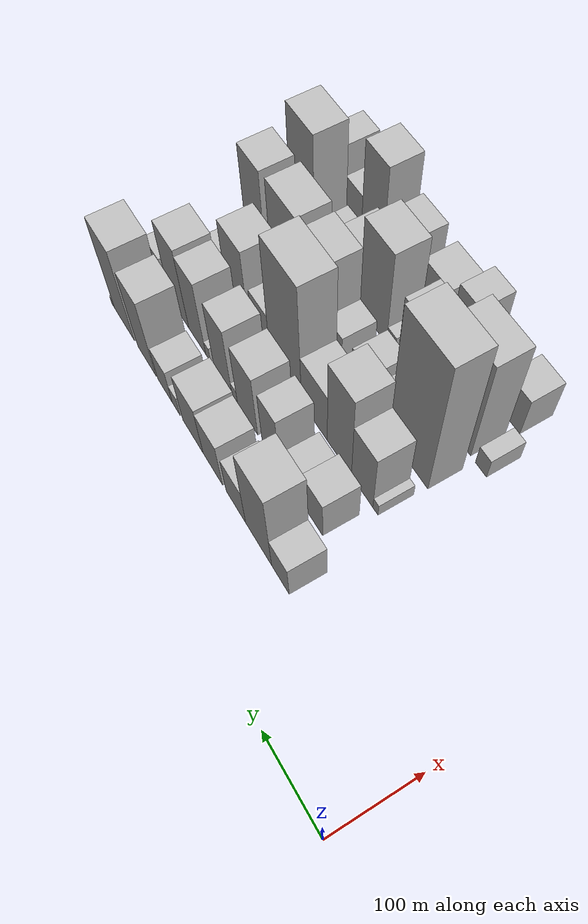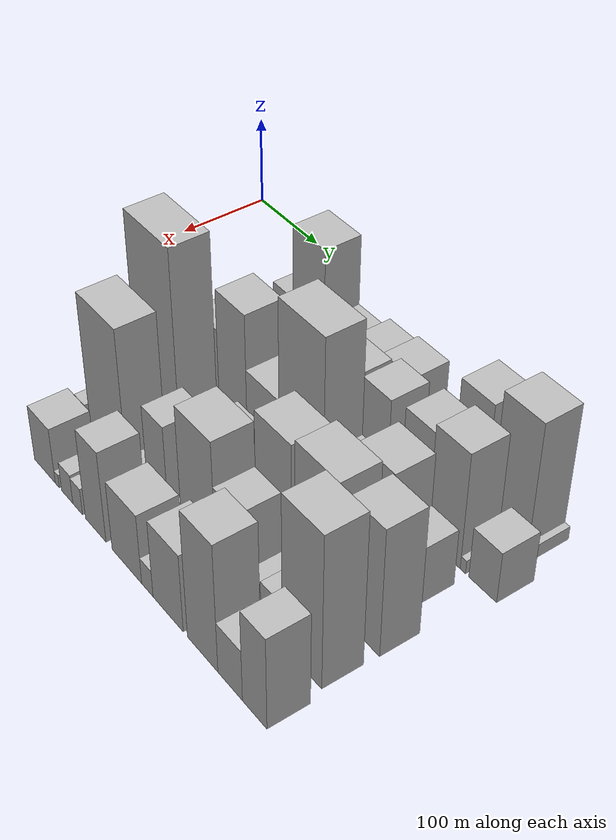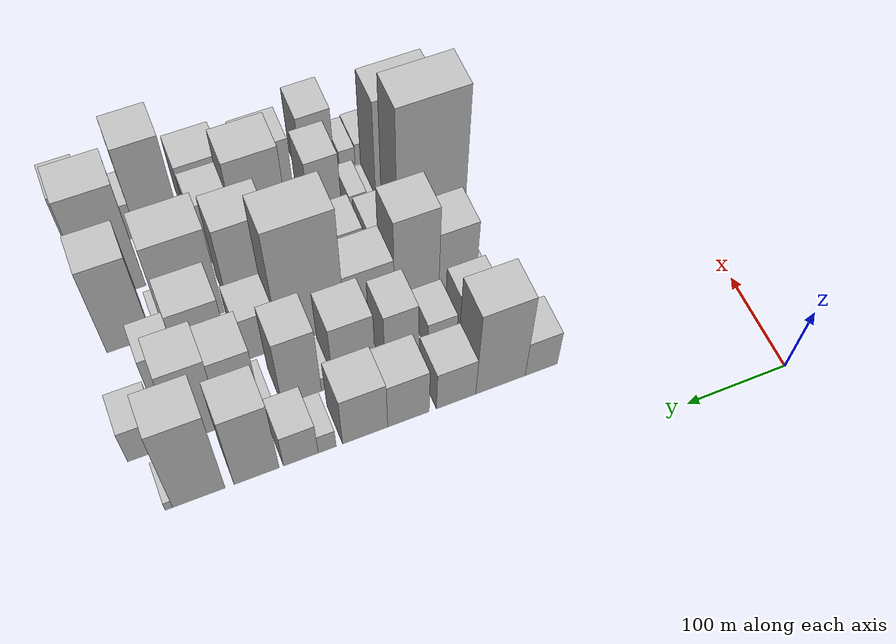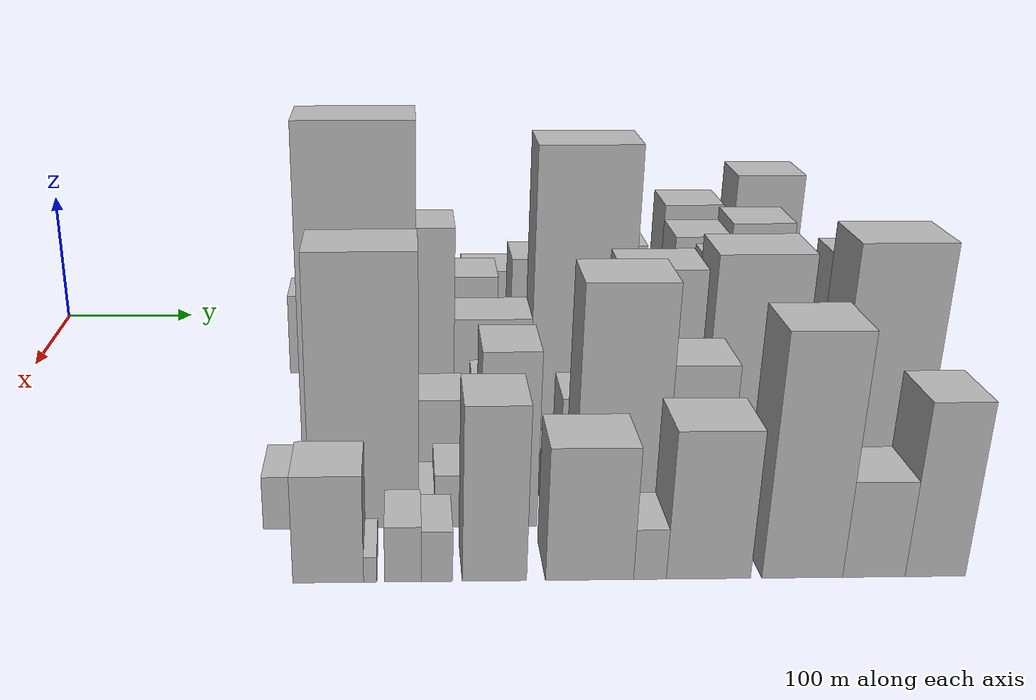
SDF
<sdf version="1.6">
 <world name="default">
  <model name="building_30">
   <static>1</static>
   <pose>100.0000 207.0768 0 0.000000 0.000000 0.000000</pose>
   <link name="link">
    <pose>0 0 30.00 0 0 0</pose>
    <collision name="collision"><geometry><box><size>40.0000 31.9721 60.0000</size></box></geometry></collision>
    <visual name="visual">
     <cast_shadows>0</cast_shadows>
     <geometry><box><size>40.0000 31.9721 60.0000</size></box></geometry>
     <material>
      <script>
       <uri>model://HANNAS_wall/materials/scripts</uri>
       <uri>model://HANNAS_wall/materials/textures</uri>
       <name>vrc/HANNAS_wall</name>
      </script>
     </material>
    </visual>
   </link>
  </model>
  <model name="building_31">
   <static>1</static>
   <pose>100.0000 247.4784 0 0.000000 0.000000 0.000000</pose>
   <link name="link">
    <pose>0 0 72.00 0 0 0</pose>
    <collision name="collision"><geometry><box><size>40.0000 48.8311 144.0000</size></box></geometry></collision>
    <visual name="visual">
     <cast_shadows>0</cast_shadows>
     <geometry><box><size>40.0000 48.8311 144.0000</size></box></geometry>
     <material>
      <script>
       <uri>model://HANNAS_wall/materials/scripts</uri>
       <uri>model://HANNAS_wall/materials/textures</uri>
       <name>vrc/HANNAS_wall</name>
      </script>
     </material>
    </visual>
   </link>
  </model>
  <model name="building_32">
   <static>1</static>
   <pose>100.0000 290.9465 0 0.000000 0.000000 0.000000</pose>
   <link name="link">
    <pose>0 0 33.00 0 0 0</pose>
    <collision name="collision"><geometry><box><size>40.0000 38.1051 66.0000</size></box></geometry></collision>
    <visual name="visual">
     <cast_shadows>0</cast_shadows>
     <geometry><box><size>40.0000 38.1051 66.0000</size></box></geometry>
     <material>
      <script>
       <uri>model://HANNAS_wall/materials/scripts</uri>
       <uri>model://HANNAS_wall/materials/textures</uri>
       <name>vrc/HANNAS_wall</name>
      </script>
     </material>
    </visual>
   </link>
  </model>
  <model name="building_33">
   <static>1</static>
   <pose>100.0000 336.8426 0 0.000000 0.000000 0.000000</pose>
   <link name="link">
    <pose>0 0 39.00 0 0 0</pose>
    <collision name="collision"><geometry><box><size>40.0000 39.6870 78.0000</size></box></geometry></collision>
    <visual name="visual">
     <cast_shadows>0</cast_shadows>
     <geometry><box><size>40.0000 39.6870 78.0000</size></box></geometry>
     <material>
      <script>
       <uri>model://HANNAS_wall/materials/scripts</uri>
       <uri>model://HANNAS_wall/materials/textures</uri>
       <name>vrc/HANNAS_wall</name>
      </script>
     </material>
    </visual>
   </link>
  </model>
  <model name="building_34">
   <static>1</static>
   <pose>100.0000 377.9563 0 0.000000 0.000000 0.000000</pose>
   <link name="link">
    <pose>0 0 42.00 0 0 0</pose>
    <collision name="collision"><geometry><box><size>40.0000 42.5406 84.0000</size></box></geometry></collision>
    <visual name="visual">
     <cast_shadows>0</cast_shadows>
     <geometry><box><size>40.0000 42.5406 84.0000</size></box></geometry>
     <material>
      <script>
       <uri>model://HANNAS_wall/materials/scripts</uri>
       <uri>model://HANNAS_wall/materials/textures</uri>
       <name>vrc/HANNAS_wall</name>
      </script>
     </material>
    </visual>
   </link>
  </model>
  <model name="building_35">
   <static>1</static>
   <pose>100.0000 413.5718 0 0.000000 0.000000 0.000000</pose>
   <link name="link">
    <pose>0 0 16.50 0 0 0</pose>
    <collision name="collision"><geometry><box><size>40.0000 16.6904 33.0000</size></box></geometry></collision>
    <visual name="visual">
     <cast_shadows>0</cast_shadows>
     <geometry><box><size>40.0000 16.6904 33.0000</size></box></geometry>
     <material>
      <script>
       <uri>model://HANNAS_wall/materials/scripts</uri>
       <uri>model://HANNAS_wall/materials/textures</uri>
       <name>vrc/HANNAS_wall</name>
      </script>
     </material>
    </visual>
   </link>
  </model>
  <model name="building_36">
   <static>1</static>
   <pose>100.0000 437.9876 0 0.000000 0.000000 0.000000</pose>
   <link name="link">
    <pose>0 0 28.50 0 0 0</pose>
    <collision name="collision"><geometry><box><size>40.0000 32.1411 57.0000</size></box></geometry></collision>
    <visual name="visual">
     <cast_shadows>0</cast_shadows>
     <geometry><box><size>40.0000 32.1411 57.0000</size></box></geometry>
     <material>
      <script>
       <uri>model://HANNAS_wall/materials/scripts</uri>
       <uri>model://HANNAS_wall/materials/textures</uri>
       <name>vrc/HANNAS_wall</name>
      </script>
     </material>
    </visual>
   </link>
  </model>
  <model name="building_37">
   <static>1</static>
   <pose>100.0000 478.6781 0 0.000000 0.000000 0.000000</pose>
   <link name="link">
    <pose>0 0 63.00 0 0 0</pose>
    <collision name="collision"><geometry><box><size>40.0000 41.2398 126.0000</size></box></geometry></collision>
    <visual name="visual">
     <cast_shadows>0</cast_shadows>
     <geometry><box><size>40.0000 41.2398 126.0000</size></box></geometry>
     <material>
      <script>
       <uri>model://HANNAS_wall/materials/scripts</uri>
       <uri>model://HANNAS_wall/materials/textures</uri>
       <name>vrc/HANNAS_wall</name>
      </script>
     </material>
    </visual>
   </link>
  </model>
  <model name="building_38">
   <static>1</static>
   <pose>100.0000 530.9011 0 0.000000 0.000000 0.000000</pose>
   <link name="link">
    <pose>0 0 73.50 0 0 0</pose>
    <collision name="collision"><geometry><box><size>40.0000 47.2061 147.0000</size></box></geometry></collision>
    <visual name="visual">
     <cast_shadows>0</cast_shadows>
     <geometry><box><size>40.0000 47.2061 147.0000</size></box></geometry>
     <material>
      <script>
       <uri>model://HANNAS_wall/materials/scripts</uri>
       <uri>model://HANNAS_wall/materials/textures</uri>
       <name>vrc/HANNAS_wall</name>
      </script>
     </material>
    </visual>
   </link>
  </model>
  <model name="building_39">
   <static>1</static>
   <pose>100.0000 557.7680 0 0.000000 0.000000 0.000000</pose>
   <link name="link">
    <pose>0 0 7.50 0 0 0</pose>
    <collision name="collision"><geometry><box><size>40.0000 6.5279 15.0000</size></box></geometry></collision>
    <visual name="visual">
     <cast_shadows>0</cast_shadows>
     <geometry><box><size>40.0000 6.5279 15.0000</size></box></geometry>
     <material>
      <script>
       <uri>model://HANNAS_wall/materials/scripts</uri>
       <uri>model://HANNAS_wall/materials/textures</uri>
       <name>vrc/HANNAS_wall</name>
      </script>
     </material>
    </visual>
   </link>
  </model>
  <model name="building_81">
   <static>1</static>
   <pose>155.0000 242.4506 0 0.000000 0.000000 0.000000</pose>
   <link name="link">
    <pose>0 0 33.00 0 0 0</pose>
    <collision name="collision"><geometry><box><size>40.0000 37.1691 66.0000</size></box></geometry></collision>
    <visual name="visual">
     <cast_shadows>0</cast_shadows>
     <geometry><box><size>40.0000 37.1691 66.0000</size></box></geometry>
     <material>
      <script>
       <uri>model://HANNAS_wall/materials/scripts</uri>
       <uri>model://HANNAS_wall/materials/textures</uri>
       <name>vrc/HANNAS_wall</name>
      </script>
     </material>
    </visual>
   </link>
  </model>
  <model name="building_82">
   <static>1</static>
   <pose>155.0000 281.3263 0 0.000000 0.000000 0.000000</pose>
   <link name="link">
    <pose>0 0 25.50 0 0 0</pose>
    <collision name="collision"><geometry><box><size>40.0000 28.5824 51.0000</size></box></geometry></collision>
    <visual name="visual">
     <cast_shadows>0</cast_shadows>
     <geometry><box><size>40.0000 28.5824 51.0000</size></box></geometry>
     <material>
      <script>
       <uri>model://HANNAS_wall/materials/scripts</uri>
       <uri>model://HANNAS_wall/materials/textures</uri>
       <name>vrc/HANNAS_wall</name>
      </script>
     </material>
    </visual>
   </link>
  </model>
  <model name="building_83">
   <static>1</static>
   <pose>155.0000 321.0863 0 0.000000 0.000000 0.000000</pose>
   <link name="link">
    <pose>0 0 46.50 0 0 0</pose>
    <collision name="collision"><geometry><box><size>40.0000 32.9375 93.0000</size></box></geometry></collision>
    <visual name="visual">
     <cast_shadows>0</cast_shadows>
     <geometry><box><size>40.0000 32.9375 93.0000</size></box></geometry>
     <material>
      <script>
       <uri>model://HANNAS_wall/materials/scripts</uri>
       <uri>model://HANNAS_wall/materials/textures</uri>
       <name>vrc/HANNAS_wall</name>
      </script>
     </material>
    </visual>
   </link>
  </model>
  <model name="building_84">
   <static>1</static>
   <pose>155.0000 366.9229 0 0.000000 0.000000 0.000000</pose>
   <link name="link">
    <pose>0 0 52.50 0 0 0</pose>
    <collision name="collision"><geometry><box><size>40.0000 40.7356 105.0000</size></box></geometry></collision>
    <visual name="visual">
     <cast_shadows>0</cast_shadows>
     <geometry><box><size>40.0000 40.7356 105.0000</size></box></geometry>
     <material>
      <script>
       <uri>model://HANNAS_wall/materials/scripts</uri>
       <uri>model://HANNAS_wall/materials/textures</uri>
       <name>vrc/HANNAS_wall</name>
      </script>
     </material>
    </visual>
   </link>
  </model>
  <model name="building_85">
   <static>1</static>
   <pose>155.0000 393.0219 0 0.000000 0.000000 0.000000</pose>
   <link name="link">
    <pose>0 0 12.00 0 0 0</pose>
    <collision name="collision"><geometry><box><size>40.0000 11.4626 24.0000</size></box></geometry></collision>
    <visual name="visual">
     <cast_shadows>0</cast_shadows>
     <geometry><box><size>40.0000 11.4626 24.0000</size></box></geometry>
     <material>
      <script>
       <uri>model://HANNAS_wall/materials/scripts</uri>
       <uri>model://HANNAS_wall/materials/textures</uri>
       <name>vrc/HANNAS_wall</name>
      </script>
     </material>
    </visual>
   </link>
  </model>
  <model name="building_86">
   <static>1</static>
   <pose>155.0000 417.4923 0 0.000000 0.000000 0.000000</pose>
   <link name="link">
    <pose>0 0 57.00 0 0 0</pose>
    <collision name="collision"><geometry><box><size>40.0000 37.4781 114.0000</size></box></geometry></collision>
    <visual name="visual">
     <cast_shadows>0</cast_shadows>
     <geometry><box><size>40.0000 37.4781 114.0000</size></box></geometry>
     <material>
      <script>
       <uri>model://HANNAS_wall/materials/scripts</uri>
       <uri>model://HANNAS_wall/materials/textures</uri>
       <name>vrc/HANNAS_wall</name>
      </script>
     </material>
    </visual>
   </link>
  </model>
  <model name="building_87">
   <static>1</static>
   <pose>155.0000 449.3597 0 0.000000 0.000000 0.000000</pose>
   <link name="link">
    <pose>0 0 12.00 0 0 0</pose>
    <collision name="collision"><geometry><box><size>40.0000 10.2568 24.0000</size></box></geometry></collision>
    <visual name="visual">
     <cast_shadows>0</cast_shadows>
     <geometry><box><size>40.0000 10.2568 24.0000</size></box></geometry>
     <material>
      <script>
       <uri>model://HANNAS_wall/materials/scripts</uri>
       <uri>model://HANNAS_wall/materials/textures</uri>
       <name>vrc/HANNAS_wall</name>
      </script>
     </material>
    </visual>
   </link>
  </model>
  <model name="building_88">
   <static>1</static>
   <pose>155.0000 473.1040 0 0.000000 0.000000 0.000000</pose>
   <link name="link">
    <pose>0 0 60.00 0 0 0</pose>
    <collision name="collision"><geometry><box><size>40.0000 37.2318 120.0000</size></box></geometry></collision>
    <visual name="visual">
     <cast_shadows>0</cast_shadows>
     <geometry><box><size>40.0000 37.2318 120.0000</size></box></geometry>
     <material>
      <script>
       <uri>model://HANNAS_wall/materials/scripts</uri>
       <uri>model://HANNAS_wall/materials/textures</uri>
       <name>vrc/HANNAS_wall</name>
      </script>
     </material>
    </visual>
   </link>
  </model>
  <model name="building_89">
   <static>1</static>
   <pose>155.0000 512.6525 0 0.000000 0.000000 0.000000</pose>
   <link name="link">
    <pose>0 0 64.50 0 0 0</pose>
    <collision name="collision"><geometry><box><size>40.0000 41.8652 129.0000</size></box></geometry></collision>
    <visual name="visual">
     <cast_shadows>0</cast_shadows>
     <geometry><box><size>40.0000 41.8652 129.0000</size></box></geometry>
     <material>
      <script>
       <uri>model://HANNAS_wall/materials/scripts</uri>
       <uri>model://HANNAS_wall/materials/textures</uri>
       <name>vrc/HANNAS_wall</name>
      </script>
     </material>
    </visual>
   </link>
  </model>
  <model name="building_90">
   <static>1</static>
   <pose>155.0000 536.9593 0 0.000000 0.000000 0.000000</pose>
   <link name="link">
    <pose>0 0 7.50 0 0 0</pose>
    <collision name="collision"><geometry><box><size>40.0000 6.7485 15.0000</size></box></geometry></collision>
    <visual name="visual">
     <cast_shadows>0</cast_shadows>
     <geometry><box><size>40.0000 6.7485 15.0000</size></box></geometry>
     <material>
      <script>
       <uri>model://HANNAS_wall/materials/scripts</uri>
       <uri>model://HANNAS_wall/materials/textures</uri>
       <name>vrc/HANNAS_wall</name>
      </script>
     </material>
    </visual>
   </link>
  </model>
  <model name="building_91">
   <static>1</static>
   <pose>155.0000 561.4248 0 0.000000 0.000000 0.000000</pose>
   <link name="link">
    <pose>0 0 28.50 0 0 0</pose>
    <collision name="collision"><geometry><box><size>40.0000 34.1826 57.0000</size></box></geometry></collision>
    <visual name="visual">
     <cast_shadows>0</cast_shadows>
     <geometry><box><size>40.0000 34.1826 57.0000</size></box></geometry>
     <material>
      <script>
       <uri>model://HANNAS_wall/materials/scripts</uri>
       <uri>model://HANNAS_wall/materials/textures</uri>
       <name>vrc/HANNAS_wall</name>
      </script>
     </material>
    </visual>
   </link>
  </model>
  <model name="building_134">
   <static>1</static>
   <pose>210.0000 218.9743 0 0.000000 0.000000 0.000000</pose>
   <link name="link">
    <pose>0 0 10.50 0 0 0</pose>
    <collision name="collision"><geometry><box><size>40.0000 9.0602 21.0000</size></box></geometry></collision>
    <visual name="visual">
     <cast_shadows>0</cast_shadows>
     <geometry><box><size>40.0000 9.0602 21.0000</size></box></geometry>
     <material>
      <script>
       <uri>model://HANNAS_wall/materials/scripts</uri>
       <uri>model://HANNAS_wall/materials/textures</uri>
       <name>vrc/HANNAS_wall</name>
      </script>
     </material>
    </visual>
   </link>
  </model>
  <model name="building_135">
   <static>1</static>
   <pose>210.0000 242.5876 0 0.000000 0.000000 0.000000</pose>
   <link name="link">
    <pose>0 0 49.50 0 0 0</pose>
    <collision name="collision"><geometry><box><size>40.0000 38.1665 99.0000</size></box></geometry></collision>
    <visual name="visual">
     <cast_shadows>0</cast_shadows>
     <geometry><box><size>40.0000 38.1665 99.0000</size></box></geometry>
     <material>
      <script>
       <uri>model://HANNAS_wall/materials/scripts</uri>
       <uri>model://HANNAS_wall/materials/textures</uri>
       <name>vrc/HANNAS_wall</name>
      </script>
     </material>
    </visual>
   </link>
  </model>
  <model name="building_136">
   <static>1</static>
   <pose>210.0000 283.8394 0 0.000000 0.000000 0.000000</pose>
   <link name="link">
    <pose>0 0 72.00 0 0 0</pose>
    <collision name="collision"><geometry><box><size>40.0000 44.3369 144.0000</size></box></geometry></collision>
    <visual name="visual">
     <cast_shadows>0</cast_shadows>
     <geometry><box><size>40.0000 44.3369 144.0000</size></box></geometry>
     <material>
      <script>
       <uri>model://HANNAS_wall/materials/scripts</uri>
       <uri>model://HANNAS_wall/materials/textures</uri>
       <name>vrc/HANNAS_wall</name>
      </script>
     </material>
    </visual>
   </link>
  </model>
  <model name="building_137">
   <static>1</static>
   <pose>210.0000 330.6509 0 0.000000 0.000000 0.000000</pose>
   <link name="link">
    <pose>0 0 42.00 0 0 0</pose>
    <collision name="collision"><geometry><box><size>40.0000 49.2861 84.0000</size></box></geometry></collision>
    <visual name="visual">
     <cast_shadows>0</cast_shadows>
     <geometry><box><size>40.0000 49.2861 84.0000</size></box></geometry>
     <material>
      <script>
       <uri>model://HANNAS_wall/materials/scripts</uri>
       <uri>model://HANNAS_wall/materials/textures</uri>
       <name>vrc/HANNAS_wall</name>
      </script>
     </material>
    </visual>
   </link>
  </model>
  <model name="building_138">
   <static>1</static>
   <pose>210.0000 387.0915 0 0.000000 0.000000 0.000000</pose>
   <link name="link">
    <pose>0 0 97.50 0 0 0</pose>
    <collision name="collision"><geometry><box><size>40.0000 63.5952 195.0000</size></box></geometry></collision>
    <visual name="visual">
     <cast_shadows>0</cast_shadows>
     <geometry><box><size>40.0000 63.5952 195.0000</size></box></geometry>
     <material>
      <script>
       <uri>model://HANNAS_wall/materials/scripts</uri>
       <uri>model://HANNAS_wall/materials/textures</uri>
       <name>vrc/HANNAS_wall</name>
      </script>
     </material>
    </visual>
   </link>
  </model>
  <model name="building_139">
   <static>1</static>
   <pose>210.0000 436.9905 0 0.000000 0.000000 0.000000</pose>
   <link name="link">
    <pose>0 0 36.00 0 0 0</pose>
    <collision name="collision"><geometry><box><size>40.0000 36.2027 72.0000</size></box></geometry></collision>
    <visual name="visual">
     <cast_shadows>0</cast_shadows>
     <geometry><box><size>40.0000 36.2027 72.0000</size></box></geometry>
     <material>
      <script>
       <uri>model://HANNAS_wall/materials/scripts</uri>
       <uri>model://HANNAS_wall/materials/textures</uri>
       <name>vrc/HANNAS_wall</name>
      </script>
     </material>
    </visual>
   </link>
  </model>
  <model name="building_140">
   <static>1</static>
   <pose>210.0000 486.9974 0 0.000000 0.000000 0.000000</pose>
   <link name="link">
    <pose>0 0 60.00 0 0 0</pose>
    <collision name="collision"><geometry><box><size>40.0000 45.8111 120.0000</size></box></geometry></collision>
    <visual name="visual">
     <cast_shadows>0</cast_shadows>
     <geometry><box><size>40.0000 45.8111 120.0000</size></box></geometry>
     <material>
      <script>
       <uri>model://HANNAS_wall/materials/scripts</uri>
       <uri>model://HANNAS_wall/materials/textures</uri>
       <name>vrc/HANNAS_wall</name>
      </script>
     </material>
    </visual>
   </link>
  </model>
  <model name="building_141">
   <static>1</static>
   <pose>210.0000 526.6734 0 0.000000 0.000000 0.000000</pose>
   <link name="link">
    <pose>0 0 31.50 0 0 0</pose>
    <collision name="collision"><geometry><box><size>40.0000 33.5410 63.0000</size></box></geometry></collision>
    <visual name="visual">
     <cast_shadows>0</cast_shadows>
     <geometry><box><size>40.0000 33.5410 63.0000</size></box></geometry>
     <material>
      <script>
       <uri>model://HANNAS_wall/materials/scripts</uri>
       <uri>model://HANNAS_wall/materials/textures</uri>
       <name>vrc/HANNAS_wall</name>
      </script>
     </material>
    </visual>
   </link>
  </model>
  <model name="building_184">
   <static>1</static>
   <pose>265.0000 246.9088 0 0.000000 0.000000 0.000000</pose>
   <link name="link">
    <pose>0 0 111.00 0 0 0</pose>
    <collision name="collision"><geometry><box><size>40.0000 68.9936 222.0000</size></box></geometry></collision>
    <visual name="visual">
     <cast_shadows>0</cast_shadows>
     <geometry><box><size>40.0000 68.9936 222.0000</size></box></geometry>
     <material>
      <script>
       <uri>model://HANNAS_wall/materials/scripts</uri>
       <uri>model://HANNAS_wall/materials/textures</uri>
       <name>vrc/HANNAS_wall</name>
      </script>
     </material>
    </visual>
   </link>
  </model>
  <model name="building_185">
   <static>1</static>
   <pose>265.0000 295.7043 0 0.000000 0.000000 0.000000</pose>
   <link name="link">
    <pose>0 0 27.00 0 0 0</pose>
    <collision name="collision"><geometry><box><size>40.0000 28.5974 54.0000</size></box></geometry></collision>
    <visual name="visual">
     <cast_shadows>0</cast_shadows>
     <geometry><box><size>40.0000 28.5974 54.0000</size></box></geometry>
     <material>
      <script>
       <uri>model://HANNAS_wall/materials/scripts</uri>
       <uri>model://HANNAS_wall/materials/textures</uri>
       <name>vrc/HANNAS_wall</name>
      </script>
     </material>
    </visual>
   </link>
  </model>
  <model name="building_186">
   <static>1</static>
   <pose>265.0000 332.8525 0 0.000000 0.000000 0.000000</pose>
   <link name="link">
    <pose>0 0 31.50 0 0 0</pose>
    <collision name="collision"><geometry><box><size>40.0000 35.6989 63.0000</size></box></geometry></collision>
    <visual name="visual">
     <cast_shadows>0</cast_shadows>
     <geometry><box><size>40.0000 35.6989 63.0000</size></box></geometry>
     <material>
      <script>
       <uri>model://HANNAS_wall/materials/scripts</uri>
       <uri>model://HANNAS_wall/materials/textures</uri>
       <name>vrc/HANNAS_wall</name>
      </script>
     </material>
    </visual>
   </link>
  </model>
  <model name="building_187">
   <static>1</static>
   <pose>265.0000 355.3073 0 0.000000 0.000000 0.000000</pose>
   <link name="link">
    <pose>0 0 10.50 0 0 0</pose>
    <collision name="collision"><geometry><box><size>40.0000 9.2108 21.0000</size></box></geometry></collision>
    <visual name="visual">
     <cast_shadows>0</cast_shadows>
     <geometry><box><size>40.0000 9.2108 21.0000</size></box></geometry>
     <material>
      <script>
       <uri>model://HANNAS_wall/materials/scripts</uri>
       <uri>model://HANNAS_wall/materials/textures</uri>
       <name>vrc/HANNAS_wall</name>
      </script>
     </material>
    </visual>
   </link>
  </model>
  <model name="building_188">
   <static>1</static>
   <pose>265.0000 384.2195 0 0.000000 0.000000 0.000000</pose>
   <link name="link">
    <pose>0 0 27.00 0 0 0</pose>
    <collision name="collision"><geometry><box><size>40.0000 30.6137 54.0000</size></box></geometry></collision>
    <visual name="visual">
     <cast_shadows>0</cast_shadows>
     <geometry><box><size>40.0000 30.6137 54.0000</size></box></geometry>
     <material>
      <script>
       <uri>model://HANNAS_wall/materials/scripts</uri>
       <uri>model://HANNAS_wall/materials/textures</uri>
       <name>vrc/HANNAS_wall</name>
      </script>
     </material>
    </visual>
   </link>
  </model>
  <model name="building_189">
   <static>1</static>
   <pose>265.0000 424.6347 0 0.000000 0.000000 0.000000</pose>
   <link name="link">
    <pose>0 0 67.50 0 0 0</pose>
    <collision name="collision"><geometry><box><size>40.0000 50.2166 135.0000</size></box></geometry></collision>
    <visual name="visual">
     <cast_shadows>0</cast_shadows>
     <geometry><box><size>40.0000 50.2166 135.0000</size></box></geometry>
     <material>
      <script>
       <uri>model://HANNAS_wall/materials/scripts</uri>
       <uri>model://HANNAS_wall/materials/textures</uri>
       <name>vrc/HANNAS_wall</name>
      </script>
     </material>
    </visual>
   </link>
  </model>
  <model name="building_190">
   <static>1</static>
   <pose>265.0000 483.2213 0 0.000000 0.000000 0.000000</pose>
   <link name="link">
    <pose>0 0 72.00 0 0 0</pose>
    <collision name="collision"><geometry><box><size>40.0000 56.9568 144.0000</size></box></geometry></collision>
    <visual name="visual">
     <cast_shadows>0</cast_shadows>
     <geometry><box><size>40.0000 56.9568 144.0000</size></box></geometry>
     <material>
      <script>
       <uri>model://HANNAS_wall/materials/scripts</uri>
       <uri>model://HANNAS_wall/materials/textures</uri>
       <name>vrc/HANNAS_wall</name>
      </script>
     </material>
    </visual>
   </link>
  </model>
  <model name="building_191">
   <static>1</static>
   <pose>265.0000 515.3617 0 0.000000 0.000000 0.000000</pose>
   <link name="link">
    <pose>0 0 7.50 0 0 0</pose>
    <collision name="collision"><geometry><box><size>40.0000 7.3239 15.0000</size></box></geometry></collision>
    <visual name="visual">
     <cast_shadows>0</cast_shadows>
     <geometry><box><size>40.0000 7.3239 15.0000</size></box></geometry>
     <material>
      <script>
       <uri>model://HANNAS_wall/materials/scripts</uri>
       <uri>model://HANNAS_wall/materials/textures</uri>
       <name>vrc/HANNAS_wall</name>
      </script>
     </material>
    </visual>
   </link>
  </model>
  <model name="building_192">
   <static>1</static>
   <pose>265.0000 545.4132 0 0.000000 0.000000 0.000000</pose>
   <link name="link">
    <pose>0 0 70.50 0 0 0</pose>
    <collision name="collision"><geometry><box><size>40.0000 42.7792 141.0000</size></box></geometry></collision>
    <visual name="visual">
     <cast_shadows>0</cast_shadows>
     <geometry><box><size>40.0000 42.7792 141.0000</size></box></geometry>
     <material>
      <script>
       <uri>model://HANNAS_wall/materials/scripts</uri>
       <uri>model://HANNAS_wall/materials/textures</uri>
       <name>vrc/HANNAS_wall</name>
      </script>
     </material>
    </visual>
   </link>
  </model>
  <model name="building_232">
   <static>1</static>
   <pose>320.0000 202.8331 0 0.000000 0.000000 0.000000</pose>
   <link name="link">
    <pose>0 0 16.50 0 0 0</pose>
    <collision name="collision"><geometry><box><size>40.0000 18.3374 33.0000</size></box></geometry></collision>
    <visual name="visual">
     <cast_shadows>0</cast_shadows>
     <geometry><box><size>40.0000 18.3374 33.0000</size></box></geometry>
     <material>
      <script>
       <uri>model://HANNAS_wall/materials/scripts</uri>
       <uri>model://HANNAS_wall/materials/textures</uri>
       <name>vrc/HANNAS_wall</name>
      </script>
     </material>
    </visual>
   </link>
  </model>
  <model name="building_233">
   <static>1</static>
   <pose>320.0000 250.8969 0 0.000000 0.000000 0.000000</pose>
   <link name="link">
    <pose>0 0 82.50 0 0 0</pose>
    <collision name="collision"><geometry><box><size>40.0000 61.7901 165.0000</size></box></geometry></collision>
    <visual name="visual">
     <cast_shadows>0</cast_shadows>
     <geometry><box><size>40.0000 61.7901 165.0000</size></box></geometry>
     <material>
      <script>
       <uri>model://HANNAS_wall/materials/scripts</uri>
       <uri>model://HANNAS_wall/materials/textures</uri>
       <name>vrc/HANNAS_wall</name>
      </script>
     </material>
    </visual>
   </link>
  </model>
  <model name="building_234">
   <static>1</static>
   <pose>320.0000 286.3077 0 0.000000 0.000000 0.000000</pose>
   <link name="link">
    <pose>0 0 10.50 0 0 0</pose>
    <collision name="collision"><geometry><box><size>40.0000 9.0316 21.0000</size></box></geometry></collision>
    <visual name="visual">
     <cast_shadows>0</cast_shadows>
     <geometry><box><size>40.0000 9.0316 21.0000</size></box></geometry>
     <material>
      <script>
       <uri>model://HANNAS_wall/materials/scripts</uri>
       <uri>model://HANNAS_wall/materials/textures</uri>
       <name>vrc/HANNAS_wall</name>
      </script>
     </material>
    </visual>
   </link>
  </model>
  <model name="building_235">
   <static>1</static>
   <pose>320.0000 299.6743 0 0.000000 0.000000 0.000000</pose>
   <link name="link">
    <pose>0 0 16.50 0 0 0</pose>
    <collision name="collision"><geometry><box><size>40.0000 17.7015 33.0000</size></box></geometry></collision>
    <visual name="visual">
     <cast_shadows>0</cast_shadows>
     <geometry><box><size>40.0000 17.7015 33.0000</size></box></geometry>
     <material>
      <script>
       <uri>model://HANNAS_wall/materials/scripts</uri>
       <uri>model://HANNAS_wall/materials/textures</uri>
       <name>vrc/HANNAS_wall</name>
      </script>
     </material>
    </visual>
   </link>
  </model>
  <model name="building_236">
   <static>1</static>
   <pose>320.0000 332.8367 0 0.000000 0.000000 0.000000</pose>
   <link name="link">
    <pose>0 0 54.00 0 0 0</pose>
    <collision name="collision"><geometry><box><size>40.0000 32.6235 108.0000</size></box></geometry></collision>
    <visual name="visual">
     <cast_shadows>0</cast_shadows>
     <geometry><box><size>40.0000 32.6235 108.0000</size></box></geometry>
     <material>
      <script>
       <uri>model://HANNAS_wall/materials/scripts</uri>
       <uri>model://HANNAS_wall/materials/textures</uri>
       <name>vrc/HANNAS_wall</name>
      </script>
     </material>
    </visual>
   </link>
  </model>
  <model name="building_237">
   <static>1</static>
   <pose>320.0000 362.1706 0 0.000000 0.000000 0.000000</pose>
   <link name="link">
    <pose>0 0 15.00 0 0 0</pose>
    <collision name="collision"><geometry><box><size>40.0000 16.0442 30.0000</size></box></geometry></collision>
    <visual name="visual">
     <cast_shadows>0</cast_shadows>
     <geometry><box><size>40.0000 16.0442 30.0000</size></box></geometry>
     <material>
      <script>
       <uri>model://HANNAS_wall/materials/scripts</uri>
       <uri>model://HANNAS_wall/materials/textures</uri>
       <name>vrc/HANNAS_wall</name>
      </script>
     </material>
    </visual>
   </link>
  </model>
  <model name="building_238">
   <static>1</static>
   <pose>320.0000 395.8200 0 0.000000 0.000000 0.000000</pose>
   <link name="link">
    <pose>0 0 73.50 0 0 0</pose>
    <collision name="collision"><geometry><box><size>40.0000 51.2545 147.0000</size></box></geometry></collision>
    <visual name="visual">
     <cast_shadows>0</cast_shadows>
     <geometry><box><size>40.0000 51.2545 147.0000</size></box></geometry>
     <material>
      <script>
       <uri>model://HANNAS_wall/materials/scripts</uri>
       <uri>model://HANNAS_wall/materials/textures</uri>
       <name>vrc/HANNAS_wall</name>
      </script>
     </material>
    </visual>
   </link>
  </model>
  <model name="building_239">
   <static>1</static>
   <pose>320.0000 439.4277 0 0.000000 0.000000 0.000000</pose>
   <link name="link">
    <pose>0 0 49.50 0 0 0</pose>
    <collision name="collision"><geometry><box><size>40.0000 35.9609 99.0000</size></box></geometry></collision>
    <visual name="visual">
     <cast_shadows>0</cast_shadows>
     <geometry><box><size>40.0000 35.9609 99.0000</size></box></geometry>
     <material>
      <script>
       <uri>model://HANNAS_wall/materials/scripts</uri>
       <uri>model://HANNAS_wall/materials/textures</uri>
       <name>vrc/HANNAS_wall</name>
      </script>
     </material>
    </visual>
   </link>
  </model>
  <model name="building_240">
   <static>1</static>
   <pose>320.0000 466.6482 0 0.000000 0.000000 0.000000</pose>
   <link name="link">
    <pose>0 0 16.50 0 0 0</pose>
    <collision name="collision"><geometry><box><size>40.0000 18.4801 33.0000</size></box></geometry></collision>
    <visual name="visual">
     <cast_shadows>0</cast_shadows>
     <geometry><box><size>40.0000 18.4801 33.0000</size></box></geometry>
     <material>
      <script>
       <uri>model://HANNAS_wall/materials/scripts</uri>
       <uri>model://HANNAS_wall/materials/textures</uri>
       <name>vrc/HANNAS_wall</name>
      </script>
     </material>
    </visual>
   </link>
  </model>
  <model name="building_241">
   <static>1</static>
   <pose>320.0000 497.9533 0 0.000000 0.000000 0.000000</pose>
   <link name="link">
    <pose>0 0 24.00 0 0 0</pose>
    <collision name="collision"><geometry><box><size>40.0000 26.1301 48.0000</size></box></geometry></collision>
    <visual name="visual">
     <cast_shadows>0</cast_shadows>
     <geometry><box><size>40.0000 26.1301 48.0000</size></box></geometry>
     <material>
      <script>
       <uri>model://HANNAS_wall/materials/scripts</uri>
       <uri>model://HANNAS_wall/materials/textures</uri>
       <name>vrc/HANNAS_wall</name>
      </script>
     </material>
    </visual>
   </link>
  </model>
  <model name="building_242">
   <static>1</static>
   <pose>320.0000 539.8377 0 0.000000 0.000000 0.000000</pose>
   <link name="link">
    <pose>0 0 84.00 0 0 0</pose>
    <collision name="collision"><geometry><box><size>40.0000 51.6387 168.0000</size></box></geometry></collision>
    <visual name="visual">
     <cast_shadows>0</cast_shadows>
     <geometry><box><size>40.0000 51.6387 168.0000</size></box></geometry>
     <material>
      <script>
       <uri>model://HANNAS_wall/materials/scripts</uri>
       <uri>model://HANNAS_wall/materials/textures</uri>
       <name>vrc/HANNAS_wall</name>
      </script>
     </material>
    </visual>
   </link>
  </model>
  <model name="building_282">
   <static>1</static>
   <pose>375.0000 233.3361 0 0.000000 0.000000 0.000000</pose>
   <link name="link">
    <pose>0 0 31.50 0 0 0</pose>
    <collision name="collision"><geometry><box><size>40.0000 37.2787 63.0000</size></box></geometry></collision>
    <visual name="visual">
     <cast_shadows>0</cast_shadows>
     <geometry><box><size>40.0000 37.2787 63.0000</size></box></geometry>
     <material>
      <script>
       <uri>model://HANNAS_wall/materials/scripts</uri>
       <uri>model://HANNAS_wall/materials/textures</uri>
       <name>vrc/HANNAS_wall</name>
      </script>
     </material>
    </visual>
   </link>
  </model>
  <model name="building_283">
   <static>1</static>
   <pose>375.0000 255.4935 0 0.000000 0.000000 0.000000</pose>
   <link name="link">
    <pose>0 0 7.50 0 0 0</pose>
    <collision name="collision"><geometry><box><size>40.0000 7.0362 15.0000</size></box></geometry></collision>
    <visual name="visual">
     <cast_shadows>0</cast_shadows>
     <geometry><box><size>40.0000 7.0362 15.0000</size></box></geometry>
     <material>
      <script>
       <uri>model://HANNAS_wall/materials/scripts</uri>
       <uri>model://HANNAS_wall/materials/textures</uri>
       <name>vrc/HANNAS_wall</name>
      </script>
     </material>
    </visual>
   </link>
  </model>
  <model name="building_284">
   <static>1</static>
   <pose>375.0000 272.7546 0 0.000000 0.000000 0.000000</pose>
   <link name="link">
    <pose>0 0 16.50 0 0 0</pose>
    <collision name="collision"><geometry><box><size>40.0000 19.4860 33.0000</size></box></geometry></collision>
    <visual name="visual">
     <cast_shadows>0</cast_shadows>
     <geometry><box><size>40.0000 19.4860 33.0000</size></box></geometry>
     <material>
      <script>
       <uri>model://HANNAS_wall/materials/scripts</uri>
       <uri>model://HANNAS_wall/materials/textures</uri>
       <name>vrc/HANNAS_wall</name>
      </script>
     </material>
    </visual>
   </link>
  </model>
  <model name="building_285">
   <static>1</static>
   <pose>375.0000 290.7454 0 0.000000 0.000000 0.000000</pose>
   <link name="link">
    <pose>0 0 15.00 0 0 0</pose>
    <collision name="collision"><geometry><box><size>40.0000 16.4955 30.0000</size></box></geometry></collision>
    <visual name="visual">
     <cast_shadows>0</cast_shadows>
     <geometry><box><size>40.0000 16.4955 30.0000</size></box></geometry>
     <material>
      <script>
       <uri>model://HANNAS_wall/materials/scripts</uri>
       <uri>model://HANNAS_wall/materials/textures</uri>
       <name>vrc/HANNAS_wall</name>
      </script>
     </material>
    </visual>
   </link>
  </model>
  <model name="building_286">
   <static>1</static>
   <pose>375.0000 321.0319 0 0.000000 0.000000 0.000000</pose>
   <link name="link">
    <pose>0 0 51.00 0 0 0</pose>
    <collision name="collision"><geometry><box><size>40.0000 34.0775 102.0000</size></box></geometry></collision>
    <visual name="visual">
     <cast_shadows>0</cast_shadows>
     <geometry><box><size>40.0000 34.0775 102.0000</size></box></geometry>
     <material>
      <script>
       <uri>model://HANNAS_wall/materials/scripts</uri>
       <uri>model://HANNAS_wall/materials/textures</uri>
       <name>vrc/HANNAS_wall</name>
      </script>
     </material>
    </visual>
   </link>
  </model>
  <model name="building_287">
   <static>1</static>
   <pose>375.0000 371.4096 0 0.000000 0.000000 0.000000</pose>
   <link name="link">
    <pose>0 0 39.00 0 0 0</pose>
    <collision name="collision"><geometry><box><size>40.0000 46.6779 78.0000</size></box></geometry></collision>
    <visual name="visual">
     <cast_shadows>0</cast_shadows>
     <geometry><box><size>40.0000 46.6779 78.0000</size></box></geometry>
     <material>
      <script>
       <uri>model://HANNAS_wall/materials/scripts</uri>
       <uri>model://HANNAS_wall/materials/textures</uri>
       <name>vrc/HANNAS_wall</name>
      </script>
     </material>
    </visual>
   </link>
  </model>
  <model name="building_288">
   <static>1</static>
   <pose>375.0000 403.4576 0 0.000000 0.000000 0.000000</pose>
   <link name="link">
    <pose>0 0 15.00 0 0 0</pose>
    <collision name="collision"><geometry><box><size>40.0000 17.4181 30.0000</size></box></geometry></collision>
    <visual name="visual">
     <cast_shadows>0</cast_shadows>
     <geometry><box><size>40.0000 17.4181 30.0000</size></box></geometry>
     <material>
      <script>
       <uri>model://HANNAS_wall/materials/scripts</uri>
       <uri>model://HANNAS_wall/materials/textures</uri>
       <name>vrc/HANNAS_wall</name>
      </script>
     </material>
    </visual>
   </link>
  </model>
  <model name="building_289">
   <static>1</static>
   <pose>375.0000 434.5782 0 0.000000 0.000000 0.000000</pose>
   <link name="link">
    <pose>0 0 43.50 0 0 0</pose>
    <collision name="collision"><geometry><box><size>40.0000 44.8230 87.0000</size></box></geometry></collision>
    <visual name="visual">
     <cast_shadows>0</cast_shadows>
     <geometry><box><size>40.0000 44.8230 87.0000</size></box></geometry>
     <material>
      <script>
       <uri>model://HANNAS_wall/materials/scripts</uri>
       <uri>model://HANNAS_wall/materials/textures</uri>
       <name>vrc/HANNAS_wall</name>
      </script>
     </material>
    </visual>
   </link>
  </model>
  <model name="building_290">
   <static>1</static>
   <pose>375.0000 484.5499 0 0.000000 0.000000 0.000000</pose>
   <link name="link">
    <pose>0 0 70.50 0 0 0</pose>
    <collision name="collision"><geometry><box><size>40.0000 43.1205 141.0000</size></box></geometry></collision>
    <visual name="visual">
     <cast_shadows>0</cast_shadows>
     <geometry><box><size>40.0000 43.1205 141.0000</size></box></geometry>
     <material>
      <script>
       <uri>model://HANNAS_wall/materials/scripts</uri>
       <uri>model://HANNAS_wall/materials/textures</uri>
       <name>vrc/HANNAS_wall</name>
      </script>
     </material>
    </visual>
   </link>
  </model>
  <model name="building_291">
   <static>1</static>
   <pose>375.0000 522.7864 0 0.000000 0.000000 0.000000</pose>
   <link name="link">
    <pose>0 0 28.50 0 0 0</pose>
    <collision name="collision"><geometry><box><size>40.0000 33.3524 57.0000</size></box></geometry></collision>
    <visual name="visual">
     <cast_shadows>0</cast_shadows>
     <geometry><box><size>40.0000 33.3524 57.0000</size></box></geometry>
     <material>
      <script>
       <uri>model://HANNAS_wall/materials/scripts</uri>
       <uri>model://HANNAS_wall/materials/textures</uri>
       <name>vrc/HANNAS_wall</name>
      </script>
     </material>
    </visual>
   </link>
  </model>
  <model name="building_292">
   <static>1</static>
   <pose>375.0000 555.5835 0 0.000000 0.000000 0.000000</pose>
   <link name="link">
    <pose>0 0 51.00 0 0 0</pose>
    <collision name="collision"><geometry><box><size>40.0000 32.2418 102.0000</size></box></geometry></collision>
    <visual name="visual">
     <cast_shadows>0</cast_shadows>
     <geometry><box><size>40.0000 32.2418 102.0000</size></box></geometry>
     <material>
      <script>
       <uri>model://HANNAS_wall/materials/scripts</uri>
       <uri>model://HANNAS_wall/materials/textures</uri>
       <name>vrc/HANNAS_wall</name>
      </script>
     </material>
    </visual>
   </link>
  </model>
 </world>
</sdf>
